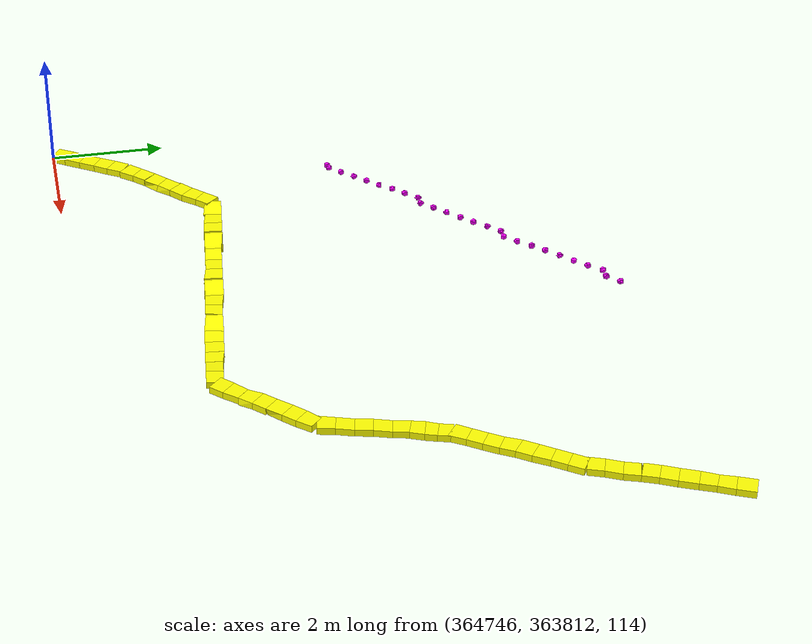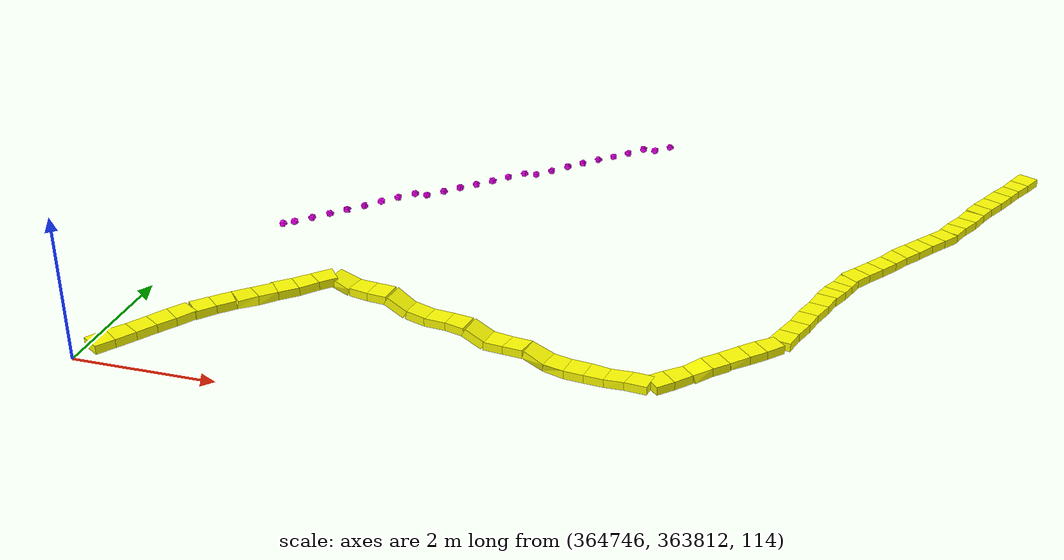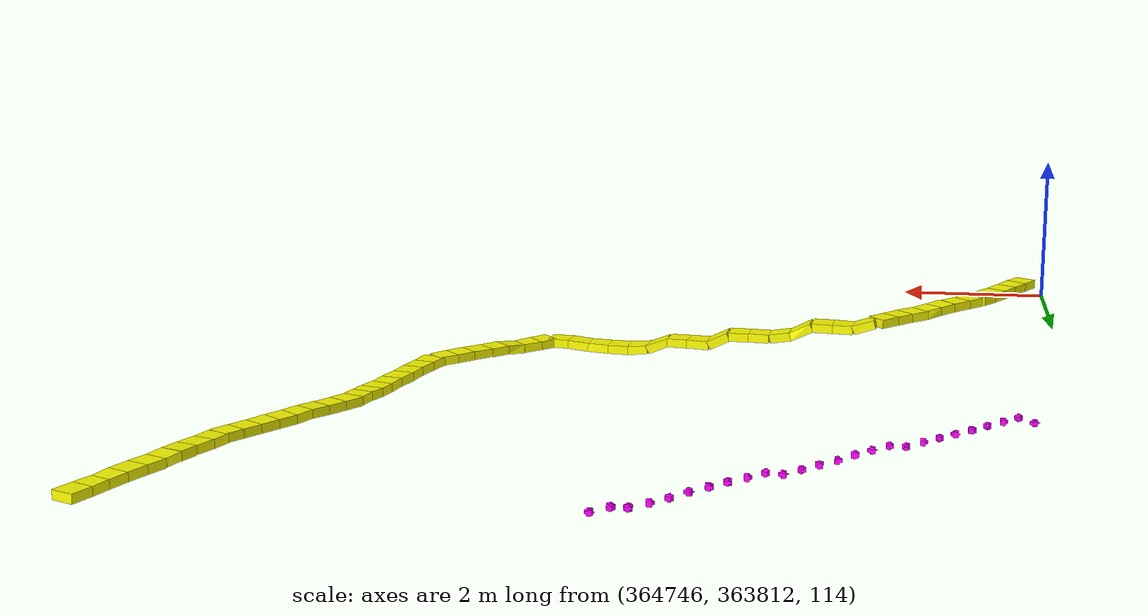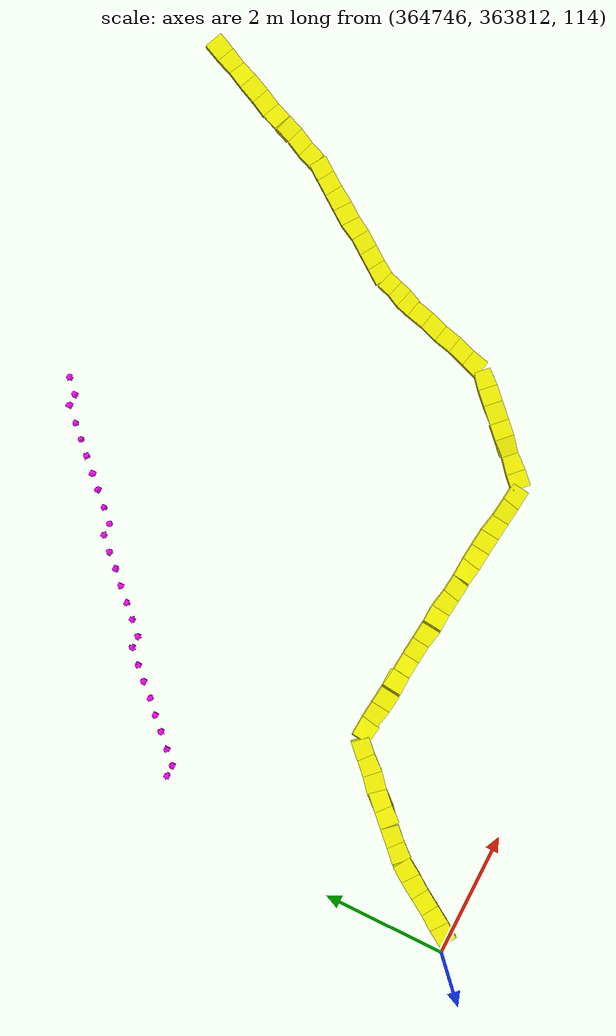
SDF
<sdf version="1.5">
 <world name="default">
  <include><uri>model://sun</uri></include>
  <model name="road_segment_347">
   <static>true</static>
   <pose>364746.31999999995 363812.16 114.21000000064173 0 4.449672419529753e-09 0.982793723303298</pose>
   <link name="link">
    <collision name="collision">
     <geometry><box><size>0.28844410201516346 0.3 0.12</size></box></geometry>
     <surface><friction><ode><mu>0.2</mu><mu2>0.2</mu2></ode></friction></surface>
    </collision>
    <visual name="visual">
     <geometry><box><size>0.28844410201516346 0.3 0.12</size></box></geometry>
     <material><ambient>1 1 0 1</ambient><diffuse>1 1 0 1</diffuse><emissive>1 1 0 1</emissive></material>
    </visual>
   </link>
  </model>
  <model name="road_segment_348">
   <static>true</static>
   <pose>364746.48 363812.39999999997 114.20700000008905 0 0.020798257337755973 0.9827937231353913</pose>
   <link name="link">
    <collision name="collision">
     <geometry><box><size>0.28850649906687204 0.3 0.12</size></box></geometry>
     <surface><friction><ode><mu>0.2</mu><mu2>0.2</mu2></ode></friction></surface>
    </collision>
    <visual name="visual">
     <geometry><box><size>0.28850649906687204 0.3 0.12</size></box></geometry>
     <material><ambient>1 1 0 1</ambient><diffuse>1 1 0 1</diffuse><emissive>1 1 0 1</emissive></material>
    </visual>
   </link>
  </model>
  <model name="road_segment_349">
   <static>true</static>
   <pose>364746.64 363812.64 114.20200000008906 0 0.01386661668165712 0.9827937234152357</pose>
   <link name="link">
    <collision name="collision">
     <geometry><box><size>0.28847183574258783 0.3 0.12</size></box></geometry>
     <surface><friction><ode><mu>0.2</mu><mu2>0.2</mu2></ode></friction></surface>
    </collision>
    <visual name="visual">
     <geometry><box><size>0.28847183574258783 0.3 0.12</size></box></geometry>
     <material><ambient>1 1 0 1</ambient><diffuse>1 1 0 1</diffuse><emissive>1 1 0 1</emissive></material>
    </visual>
   </link>
  </model>
  <model name="road_segment_350">
   <static>true</static>
   <pose>364746.8 363812.88 114.2 0 -0.0 0.9827937231353913</pose>
   <link name="link">
    <collision name="collision">
     <geometry><box><size>0.28844410204745125 0.3 0.12</size></box></geometry>
     <surface><friction><ode><mu>0.2</mu><mu2>0.2</mu2></ode></friction></surface>
    </collision>
    <visual name="visual">
     <geometry><box><size>0.28844410204745125 0.3 0.12</size></box></geometry>
     <material><ambient>1 1 0 1</ambient><diffuse>1 1 0 1</diffuse><emissive>1 1 0 1</emissive></material>
    </visual>
   </link>
  </model>
  <model name="road_segment_351">
   <static>true</static>
   <pose>364746.95999999996 363813.12 114.2 0 -0.0 0.982793723303298</pose>
   <link name="link">
    <collision name="collision">
     <geometry><box><size>0.28844410201516346 0.3 0.12</size></box></geometry>
     <surface><friction><ode><mu>0.2</mu><mu2>0.2</mu2></ode></friction></surface>
    </collision>
    <visual name="visual">
     <geometry><box><size>0.28844410201516346 0.3 0.12</size></box></geometry>
     <material><ambient>1 1 0 1</ambient><diffuse>1 1 0 1</diffuse><emissive>1 1 0 1</emissive></material>
    </visual>
   </link>
  </model>
  <model name="road_segment_352">
   <static>true</static>
   <pose>364747.14 363813.33999999997 114.2 0 -0.0 0.7853981633974483</pose>
   <link name="link">
    <collision name="collision">
     <geometry><box><size>0.2828427124910826 0.3 0.12</size></box></geometry>
     <surface><friction><ode><mu>0.1</mu><mu2>0.1</mu2></ode></friction></surface>
    </collision>
    <visual name="visual">
     <geometry><box><size>0.2828427124910826 0.3 0.12</size></box></geometry>
     <material><ambient>1 1 0 1</ambient><diffuse>1 1 0 1</diffuse><emissive>1 1 0 1</emissive></material>
    </visual>
   </link>
  </model>
  <model name="road_segment_353">
   <static>true</static>
   <pose>364747.33999999997 363813.54000000004 114.2 0 -0.0 0.7853981633974483</pose>
   <link name="link">
    <collision name="collision">
     <geometry><box><size>0.2828427124910826 0.3 0.12</size></box></geometry>
     <surface><friction><ode><mu>0.2</mu><mu2>0.2</mu2></ode></friction></surface>
    </collision>
    <visual name="visual">
     <geometry><box><size>0.2828427124910826 0.3 0.12</size></box></geometry>
     <material><ambient>1 1 0 1</ambient><diffuse>1 1 0 1</diffuse><emissive>1 1 0 1</emissive></material>
    </visual>
   </link>
  </model>
  <model name="road_segment_354">
   <static>true</static>
   <pose>364747.54000000004 363813.74 114.19500000009022 0 0.03534061806756518 0.7853981633974483</pose>
   <link name="link">
    <collision name="collision">
     <geometry><box><size>0.28301943397177626 0.3 0.12</size></box></geometry>
     <surface><friction><ode><mu>0.2</mu><mu2>0.2</mu2></ode></friction></surface>
    </collision>
    <visual name="visual">
     <geometry><box><size>0.28301943397177626 0.3 0.12</size></box></geometry>
     <material><ambient>1 1 0 1</ambient><diffuse>1 1 0 1</diffuse><emissive>1 1 0 1</emissive></material>
    </visual>
   </link>
  </model>
  <model name="road_segment_355">
   <static>true</static>
   <pose>364747.74 363813.94 114.18500000016442 0 0.03534061882803658 0.7853981633974483</pose>
   <link name="link">
    <collision name="collision">
     <geometry><box><size>0.2830194338970162 0.3 0.12</size></box></geometry>
     <surface><friction><ode><mu>0.2</mu><mu2>0.2</mu2></ode></friction></surface>
    </collision>
    <visual name="visual">
     <geometry><box><size>0.2830194338970162 0.3 0.12</size></box></geometry>
     <material><ambient>1 1 0 1</ambient><diffuse>1 1 0 1</diffuse><emissive>1 1 0 1</emissive></material>
    </visual>
   </link>
  </model>
  <model name="road_segment_356">
   <static>true</static>
   <pose>364747.93999999994 363814.14 114.1800000000742 0 5.247374604012433e-10 0.7853981633974483</pose>
   <link name="link">
    <collision name="collision">
     <geometry><box><size>0.2828427124910826 0.3 0.12</size></box></geometry>
     <surface><friction><ode><mu>0.2</mu><mu2>0.2</mu2></ode></friction></surface>
    </collision>
    <visual name="visual">
     <geometry><box><size>0.2828427124910826 0.3 0.12</size></box></geometry>
     <material><ambient>1 1 0 1</ambient><diffuse>1 1 0 1</diffuse><emissive>1 1 0 1</emissive></material>
    </visual>
   </link>
  </model>
  <model name="road_segment_357">
   <static>true</static>
   <pose>364748.14 363814.33999999997 114.17999999999999 0 -0.0 0.7853981633974483</pose>
   <link name="link">
    <collision name="collision">
     <geometry><box><size>0.2828427124910826 0.3 0.12</size></box></geometry>
     <surface><friction><ode><mu>0.2</mu><mu2>0.2</mu2></ode></friction></surface>
    </collision>
    <visual name="visual">
     <geometry><box><size>0.2828427124910826 0.3 0.12</size></box></geometry>
     <material><ambient>1 1 0 1</ambient><diffuse>1 1 0 1</diffuse><emissive>1 1 0 1</emissive></material>
    </visual>
   </link>
  </model>
  <model name="road_segment_358">
   <static>true</static>
   <pose>364748.33999999997 363814.54000000004 114.17999999999999 0 -0.0 0.7853981633974483</pose>
   <link name="link">
    <collision name="collision">
     <geometry><box><size>0.2828427124910826 0.3 0.12</size></box></geometry>
     <surface><friction><ode><mu>0.1</mu><mu2>0.1</mu2></ode></friction></surface>
    </collision>
    <visual name="visual">
     <geometry><box><size>0.2828427124910826 0.3 0.12</size></box></geometry>
     <material><ambient>1 1 0 1</ambient><diffuse>1 1 0 1</diffuse><emissive>1 1 0 1</emissive></material>
    </visual>
   </link>
  </model>
  <model name="road_segment_359">
   <static>true</static>
   <pose>364748.58375 363814.62125 114.13 0 0.3321281979316108 -0.1297025370866688</pose>
   <link name="link">
    <collision name="collision">
     <geometry><box><size>0.306696103634958 0.3 0.12</size></box></geometry>
     <surface><friction><ode><mu>0.02</mu><mu2>0.02</mu2></ode></friction></surface>
    </collision>
    <visual name="visual">
     <geometry><box><size>0.306696103634958 0.3 0.12</size></box></geometry>
     <material><ambient>1 1 0 1</ambient><diffuse>1 1 0 1</diffuse><emissive>1 1 0 1</emissive></material>
    </visual>
   </link>
  </model>
  <model name="road_segment_360">
   <static>true</static>
   <pose>364748.87124999997 363814.58375 114.08 0 -0.0 -0.12970253725977707</pose>
   <link name="link">
    <collision name="collision">
     <geometry><box><size>0.2899353376577284 0.3 0.12</size></box></geometry>
     <surface><friction><ode><mu>0.02</mu><mu2>0.02</mu2></ode></friction></surface>
    </collision>
    <visual name="visual">
     <geometry><box><size>0.2899353376577284 0.3 0.12</size></box></geometry>
     <material><ambient>1 1 0 1</ambient><diffuse>1 1 0 1</diffuse><emissive>1 1 0 1</emissive></material>
    </visual>
   </link>
  </model>
  <model name="road_segment_361">
   <static>true</static>
   <pose>364749.15875 363814.54625 114.08 0 -0.0 -0.1297025370866688</pose>
   <link name="link">
    <collision name="collision">
     <geometry><box><size>0.28993533759248113 0.3 0.12</size></box></geometry>
     <surface><friction><ode><mu>0.02</mu><mu2>0.02</mu2></ode></friction></surface>
    </collision>
    <visual name="visual">
     <geometry><box><size>0.28993533759248113 0.3 0.12</size></box></geometry>
     <material><ambient>1 1 0 1</ambient><diffuse>1 1 0 1</diffuse><emissive>1 1 0 1</emissive></material>
    </visual>
   </link>
  </model>
  <model name="road_segment_362">
   <static>true</static>
   <pose>364749.44625 363814.50875000004 114.00500000188447 0 0.4774363764952575 -0.12970253728574332</pose>
   <link name="link">
    <collision name="collision">
     <geometry><box><size>0.32643911968167894 0.3 0.12</size></box></geometry>
     <surface><friction><ode><mu>0.02</mu><mu2>0.02</mu2></ode></friction></surface>
    </collision>
    <visual name="visual">
     <geometry><box><size>0.32643911968167894 0.3 0.12</size></box></geometry>
     <material><ambient>1 1 0 1</ambient><diffuse>1 1 0 1</diffuse><emissive>1 1 0 1</emissive></material>
    </visual>
   </link>
  </model>
  <model name="road_segment_363">
   <static>true</static>
   <pose>364749.73375 363814.47125 113.90500000188446 0 0.17077256610526173 -0.12970253706070256</pose>
   <link name="link">
    <collision name="collision">
     <geometry><box><size>0.29421505807016607 0.3 0.12</size></box></geometry>
     <surface><friction><ode><mu>0.02</mu><mu2>0.02</mu2></ode></friction></surface>
    </collision>
    <visual name="visual">
     <geometry><box><size>0.29421505807016607 0.3 0.12</size></box></geometry>
     <material><ambient>1 1 0 1</ambient><diffuse>1 1 0 1</diffuse><emissive>1 1 0 1</emissive></material>
    </visual>
   </link>
  </model>
  <model name="road_segment_364">
   <static>true</static>
   <pose>364750.02125 363814.43374999997 113.87999999999998 0 -0.0 -0.12970253728574332</pose>
   <link name="link">
    <collision name="collision">
     <geometry><box><size>0.28993533760000967 0.3 0.12</size></box></geometry>
     <surface><friction><ode><mu>0.02</mu><mu2>0.02</mu2></ode></friction></surface>
    </collision>
    <visual name="visual">
     <geometry><box><size>0.28993533760000967 0.3 0.12</size></box></geometry>
     <material><ambient>1 1 0 1</ambient><diffuse>1 1 0 1</diffuse><emissive>1 1 0 1</emissive></material>
    </visual>
   </link>
  </model>
  <model name="road_segment_365">
   <static>true</static>
   <pose>364750.30874999997 363814.39625 113.87531250141471 0 0.032323524231692234 -0.12970253706070256</pose>
   <link name="link">
    <collision name="collision">
     <geometry><box><size>0.290086867317849 0.3 0.12</size></box></geometry>
     <surface><friction><ode><mu>0.02</mu><mu2>0.02</mu2></ode></friction></surface>
    </collision>
    <visual name="visual">
     <geometry><box><size>0.290086867317849 0.3 0.12</size></box></geometry>
     <material><ambient>1 1 0 1</ambient><diffuse>1 1 0 1</diffuse><emissive>1 1 0 1</emissive></material>
    </visual>
   </link>
  </model>
  <model name="road_segment_366">
   <static>true</static>
   <pose>364750.59625 363814.35875 113.80031250141472 0 0.4515935307599195 -0.12970253728574332</pose>
   <link name="link">
    <collision name="collision">
     <geometry><box><size>0.3222388732136566 0.3 0.12</size></box></geometry>
     <surface><friction><ode><mu>0.02</mu><mu2>0.02</mu2></ode></friction></surface>
    </collision>
    <visual name="visual">
     <geometry><box><size>0.3222388732136566 0.3 0.12</size></box></geometry>
     <material><ambient>1 1 0 1</ambient><diffuse>1 1 0 1</diffuse><emissive>1 1 0 1</emissive></material>
    </visual>
   </link>
  </model>
  <model name="road_segment_367">
   <static>true</static>
   <pose>364750.88375 363814.32125 113.73 0 -0.0 -0.1297025370866688</pose>
   <link name="link">
    <collision name="collision">
     <geometry><box><size>0.28993533759248113 0.3 0.12</size></box></geometry>
     <surface><friction><ode><mu>0.02</mu><mu2>0.02</mu2></ode></friction></surface>
    </collision>
    <visual name="visual">
     <geometry><box><size>0.28993533759248113 0.3 0.12</size></box></geometry>
     <material><ambient>1 1 0 1</ambient><diffuse>1 1 0 1</diffuse><emissive>1 1 0 1</emissive></material>
    </visual>
   </link>
  </model>
  <model name="road_segment_368">
   <static>true</static>
   <pose>364751.17125 363814.28375 113.73 0 -0.0 -0.12970253706070256</pose>
   <link name="link">
    <collision name="collision">
     <geometry><box><size>0.2899353376501999 0.3 0.12</size></box></geometry>
     <surface><friction><ode><mu>0.02</mu><mu2>0.02</mu2></ode></friction></surface>
    </collision>
    <visual name="visual">
     <geometry><box><size>0.2899353376501999 0.3 0.12</size></box></geometry>
     <material><ambient>1 1 0 1</ambient><diffuse>1 1 0 1</diffuse><emissive>1 1 0 1</emissive></material>
    </visual>
   </link>
  </model>
  <model name="road_segment_369">
   <static>true</static>
   <pose>364751.45875 363814.24624999997 113.66906250145291 0 0.397927459303905 -0.12970253728574332</pose>
   <link name="link">
    <collision name="collision">
     <geometry><box><size>0.31450916505872817 0.3 0.12</size></box></geometry>
     <surface><friction><ode><mu>0.02</mu><mu2>0.02</mu2></ode></friction></surface>
    </collision>
    <visual name="visual">
     <geometry><box><size>0.31450916505872817 0.3 0.12</size></box></geometry>
     <material><ambient>1 1 0 1</ambient><diffuse>1 1 0 1</diffuse><emissive>1 1 0 1</emissive></material>
    </visual>
   </link>
  </model>
  <model name="road_segment_370">
   <static>true</static>
   <pose>364751.74624999997 363814.20875 113.59406250145291 0 0.0967018387410119 -0.12970253706070256</pose>
   <link name="link">
    <collision name="collision">
     <geometry><box><size>0.29129626809622544 0.3 0.12</size></box></geometry>
     <surface><friction><ode><mu>0.02</mu><mu2>0.02</mu2></ode></friction></surface>
    </collision>
    <visual name="visual">
     <geometry><box><size>0.29129626809622544 0.3 0.12</size></box></geometry>
     <material><ambient>1 1 0 1</ambient><diffuse>1 1 0 1</diffuse><emissive>1 1 0 1</emissive></material>
    </visual>
   </link>
  </model>
  <model name="road_segment_371">
   <static>true</static>
   <pose>364752.03375 363814.17125 113.58 0 -0.0 -0.12970253728574332</pose>
   <link name="link">
    <collision name="collision">
     <geometry><box><size>0.28993533760000967 0.3 0.12</size></box></geometry>
     <surface><friction><ode><mu>0.02</mu><mu2>0.02</mu2></ode></friction></surface>
    </collision>
    <visual name="visual">
     <geometry><box><size>0.28993533760000967 0.3 0.12</size></box></geometry>
     <material><ambient>1 1 0 1</ambient><diffuse>1 1 0 1</diffuse><emissive>1 1 0 1</emissive></material>
    </visual>
   </link>
  </model>
  <model name="road_segment_372">
   <static>true</static>
   <pose>364752.32125 363814.13375 113.58187499970477 0 -0.01293319522190888 -0.1297025370866688</pose>
   <link name="link">
    <collision name="collision">
     <geometry><box><size>0.2899595876677257 0.3 0.12</size></box></geometry>
     <surface><friction><ode><mu>0.02</mu><mu2>0.02</mu2></ode></friction></surface>
    </collision>
    <visual name="visual">
     <geometry><box><size>0.2899595876677257 0.3 0.12</size></box></geometry>
     <material><ambient>1 1 0 1</ambient><diffuse>1 1 0 1</diffuse><emissive>1 1 0 1</emissive></material>
    </visual>
   </link>
  </model>
  <model name="road_segment_373">
   <static>true</static>
   <pose>364752.60875 363814.09624999994 113.59687499970477 0 -0.09029126122107566 -0.12970253725977707</pose>
   <link name="link">
    <collision name="collision">
     <geometry><box><size>0.2911212162548453 0.3 0.12</size></box></geometry>
     <surface><friction><ode><mu>0.02</mu><mu2>0.02</mu2></ode></friction></surface>
    </collision>
    <visual name="visual">
     <geometry><box><size>0.2911212162548453 0.3 0.12</size></box></geometry>
     <material><ambient>1 1 0 1</ambient><diffuse>1 1 0 1</diffuse><emissive>1 1 0 1</emissive></material>
    </visual>
   </link>
  </model>
  <model name="road_segment_374">
   <static>true</static>
   <pose>364752.89625 363814.05874999997 113.61000000066794 0 -4.607451395492734e-09 -0.1297025370866688</pose>
   <link name="link">
    <collision name="collision">
     <geometry><box><size>0.28993533759248113 0.3 0.12</size></box></geometry>
     <surface><friction><ode><mu>0.02</mu><mu2>0.02</mu2></ode></friction></surface>
    </collision>
    <visual name="visual">
     <geometry><box><size>0.28993533759248113 0.3 0.12</size></box></geometry>
     <material><ambient>1 1 0 1</ambient><diffuse>1 1 0 1</diffuse><emissive>1 1 0 1</emissive></material>
    </visual>
   </link>
  </model>
  <model name="road_segment_375">
   <static>true</static>
   <pose>364753.14 363814.14 113.61000000066794 0 4.722988844321915e-09 0.7853981633974483</pose>
   <link name="link">
    <collision name="collision">
     <geometry><box><size>0.2828427124910826 0.3 0.12</size></box></geometry>
     <surface><friction><ode><mu>0.02</mu><mu2>0.02</mu2></ode></friction></surface>
    </collision>
    <visual name="visual">
     <geometry><box><size>0.2828427124910826 0.3 0.12</size></box></geometry>
     <material><ambient>1 1 0 1</ambient><diffuse>1 1 0 1</diffuse><emissive>1 1 0 1</emissive></material>
    </visual>
   </link>
  </model>
  <model name="road_segment_376">
   <static>true</static>
   <pose>364753.33999999997 363814.33999999997 113.61 0 -0.0 0.7853981633974483</pose>
   <link name="link">
    <collision name="collision">
     <geometry><box><size>0.2828427124910826 0.3 0.12</size></box></geometry>
     <surface><friction><ode><mu>0.2</mu><mu2>0.2</mu2></ode></friction></surface>
    </collision>
    <visual name="visual">
     <geometry><box><size>0.2828427124910826 0.3 0.12</size></box></geometry>
     <material><ambient>1 1 0 1</ambient><diffuse>1 1 0 1</diffuse><emissive>1 1 0 1</emissive></material>
    </visual>
   </link>
  </model>
  <model name="road_segment_377">
   <static>true</static>
   <pose>364753.54000000004 363814.54000000004 113.62499999970315 0 -0.10567093094057438 0.7853981633974483</pose>
   <link name="link">
    <collision name="collision">
     <geometry><box><size>0.28442925302030797 0.3 0.12</size></box></geometry>
     <surface><friction><ode><mu>0.2</mu><mu2>0.2</mu2></ode></friction></surface>
    </collision>
    <visual name="visual">
     <geometry><box><size>0.28442925302030797 0.3 0.12</size></box></geometry>
     <material><ambient>1 1 0 1</ambient><diffuse>1 1 0 1</diffuse><emissive>1 1 0 1</emissive></material>
    </visual>
   </link>
  </model>
  <model name="road_segment_378">
   <static>true</static>
   <pose>364753.74 363814.74 113.63999999970314 0 -2.099100571091917e-09 0.7853981633974483</pose>
   <link name="link">
    <collision name="collision">
     <geometry><box><size>0.2828427124087646 0.3 0.12</size></box></geometry>
     <surface><friction><ode><mu>0.2</mu><mu2>0.2</mu2></ode></friction></surface>
    </collision>
    <visual name="visual">
     <geometry><box><size>0.2828427124087646 0.3 0.12</size></box></geometry>
     <material><ambient>1 1 0 1</ambient><diffuse>1 1 0 1</diffuse><emissive>1 1 0 1</emissive></material>
    </visual>
   </link>
  </model>
  <model name="road_segment_379">
   <static>true</static>
   <pose>364753.93999999994 363814.93999999994 113.64499999992434 0 -0.0353406181703343 0.7853981633974483</pose>
   <link name="link">
    <collision name="collision">
     <geometry><box><size>0.2830194339728046 0.3 0.12</size></box></geometry>
     <surface><friction><ode><mu>0.2</mu><mu2>0.2</mu2></ode></friction></surface>
    </collision>
    <visual name="visual">
     <geometry><box><size>0.2830194339728046 0.3 0.12</size></box></geometry>
     <material><ambient>1 1 0 1</ambient><diffuse>1 1 0 1</diffuse><emissive>1 1 0 1</emissive></material>
    </visual>
   </link>
  </model>
  <model name="road_segment_380">
   <static>true</static>
   <pose>364754.14 363815.14 113.64999999992433 0 -5.350372669296094e-10 0.7853981633974483</pose>
   <link name="link">
    <collision name="collision">
     <geometry><box><size>0.2828427124910826 0.3 0.12</size></box></geometry>
     <surface><friction><ode><mu>0.2</mu><mu2>0.2</mu2></ode></friction></surface>
    </collision>
    <visual name="visual">
     <geometry><box><size>0.2828427124910826 0.3 0.12</size></box></geometry>
     <material><ambient>1 1 0 1</ambient><diffuse>1 1 0 1</diffuse><emissive>1 1 0 1</emissive></material>
    </visual>
   </link>
  </model>
  <model name="road_segment_381">
   <static>true</static>
   <pose>364754.33999999997 363815.33999999997 113.65 0 -0.0 0.7853981633974483</pose>
   <link name="link">
    <collision name="collision">
     <geometry><box><size>0.2828427124910826 0.3 0.12</size></box></geometry>
     <surface><friction><ode><mu>0.2</mu><mu2>0.2</mu2></ode></friction></surface>
    </collision>
    <visual name="visual">
     <geometry><box><size>0.2828427124910826 0.3 0.12</size></box></geometry>
     <material><ambient>1 1 0 1</ambient><diffuse>1 1 0 1</diffuse><emissive>1 1 0 1</emissive></material>
    </visual>
   </link>
  </model>
  <model name="road_segment_382">
   <static>true</static>
   <pose>364754.48 363815.58 113.65 0 -0.0 1.2924966677623289</pose>
   <link name="link">
    <collision name="collision">
     <geometry><box><size>0.29120439560256284 0.3 0.12</size></box></geometry>
     <surface><friction><ode><mu>0.2</mu><mu2>0.2</mu2></ode></friction></surface>
    </collision>
    <visual name="visual">
     <geometry><box><size>0.29120439560256284 0.3 0.12</size></box></geometry>
     <material><ambient>1 1 0 1</ambient><diffuse>1 1 0 1</diffuse><emissive>1 1 0 1</emissive></material>
    </visual>
   </link>
  </model>
  <model name="road_segment_383">
   <static>true</static>
   <pose>364754.56000000006 363815.86 113.65000000000002 0 -4.880027545095268e-14 1.292496667707416</pose>
   <link name="link">
    <collision name="collision">
     <geometry><box><size>0.2912043955465948 0.3 0.12</size></box></geometry>
     <surface><friction><ode><mu>0.2</mu><mu2>0.2</mu2></ode></friction></surface>
    </collision>
    <visual name="visual">
     <geometry><box><size>0.2912043955465948 0.3 0.12</size></box></geometry>
     <material><ambient>1 1 0 1</ambient><diffuse>1 1 0 1</diffuse><emissive>1 1 0 1</emissive></material>
    </visual>
   </link>
  </model>
  <model name="road_segment_384">
   <static>true</static>
   <pose>364754.64 363816.14 113.65000000000002 0 4.880027544425327e-14 1.292496667954524</pose>
   <link name="link">
    <collision name="collision">
     <geometry><box><size>0.29120439558657196 0.3 0.12</size></box></geometry>
     <surface><friction><ode><mu>0.2</mu><mu2>0.2</mu2></ode></friction></surface>
    </collision>
    <visual name="visual">
     <geometry><box><size>0.29120439558657196 0.3 0.12</size></box></geometry>
     <material><ambient>1 1 0 1</ambient><diffuse>1 1 0 1</diffuse><emissive>1 1 0 1</emissive></material>
    </visual>
   </link>
  </model>
  <model name="road_segment_385">
   <static>true</static>
   <pose>364754.72 363816.42000000004 113.65000000000002 0 -4.880027545095268e-14 1.292496667707416</pose>
   <link name="link">
    <collision name="collision">
     <geometry><box><size>0.2912043955465948 0.3 0.12</size></box></geometry>
     <surface><friction><ode><mu>0.2</mu><mu2>0.2</mu2></ode></friction></surface>
    </collision>
    <visual name="visual">
     <geometry><box><size>0.2912043955465948 0.3 0.12</size></box></geometry>
     <material><ambient>1 1 0 1</ambient><diffuse>1 1 0 1</diffuse><emissive>1 1 0 1</emissive></material>
    </visual>
   </link>
  </model>
  <model name="road_segment_386">
   <static>true</static>
   <pose>364754.80000000005 363816.7 113.65000000000002 0 4.880027544157351e-14 1.2924966677623289</pose>
   <link name="link">
    <collision name="collision">
     <geometry><box><size>0.29120439560256284 0.3 0.12</size></box></geometry>
     <surface><friction><ode><mu>0.2</mu><mu2>0.2</mu2></ode></friction></surface>
    </collision>
    <visual name="visual">
     <geometry><box><size>0.29120439560256284 0.3 0.12</size></box></geometry>
     <material><ambient>1 1 0 1</ambient><diffuse>1 1 0 1</diffuse><emissive>1 1 0 1</emissive></material>
    </visual>
   </link>
  </model>
  <model name="road_segment_387">
   <static>true</static>
   <pose>364754.87333333335 363816.94000000006 113.65 0 -0.0 1.249045772485566</pose>
   <link name="link">
    <collision name="collision">
     <geometry><box><size>0.21081851068402757 0.3 0.12</size></box></geometry>
     <surface><friction><ode><mu>0.2</mu><mu2>0.2</mu2></ode></friction></surface>
    </collision>
    <visual name="visual">
     <geometry><box><size>0.21081851068402757 0.3 0.12</size></box></geometry>
     <material><ambient>1 1 0 1</ambient><diffuse>1 1 0 1</diffuse><emissive>1 1 0 1</emissive></material>
    </visual>
   </link>
  </model>
  <model name="road_segment_388">
   <static>true</static>
   <pose>364754.94 363817.14 113.65 0 -0.0 1.2490457723982544</pose>
   <link name="link">
    <collision name="collision">
     <geometry><box><size>0.21081851062880694 0.3 0.12</size></box></geometry>
     <surface><friction><ode><mu>0.2</mu><mu2>0.2</mu2></ode></friction></surface>
    </collision>
    <visual name="visual">
     <geometry><box><size>0.21081851062880694 0.3 0.12</size></box></geometry>
     <material><ambient>1 1 0 1</ambient><diffuse>1 1 0 1</diffuse><emissive>1 1 0 1</emissive></material>
    </visual>
   </link>
  </model>
  <model name="road_segment_389">
   <static>true</static>
   <pose>364755.00666666665 363817.33999999997 113.65 0 -0.0 1.249045772485566</pose>
   <link name="link">
    <collision name="collision">
     <geometry><box><size>0.21081851068402757 0.3 0.12</size></box></geometry>
     <surface><friction><ode><mu>0.2</mu><mu2>0.2</mu2></ode></friction></surface>
    </collision>
    <visual name="visual">
     <geometry><box><size>0.21081851068402757 0.3 0.12</size></box></geometry>
     <material><ambient>1 1 0 1</ambient><diffuse>1 1 0 1</diffuse><emissive>1 1 0 1</emissive></material>
    </visual>
   </link>
  </model>
  <model name="road_segment_390">
   <static>true</static>
   <pose>364755.115 363817.5525 113.65 0 -0.0 0.9827937231279288</pose>
   <link name="link">
    <collision name="collision">
     <geometry><box><size>0.27041634565334166 0.3 0.12</size></box></geometry>
     <surface><friction><ode><mu>0.2</mu><mu2>0.2</mu2></ode></friction></surface>
    </collision>
    <visual name="visual">
     <geometry><box><size>0.27041634565334166 0.3 0.12</size></box></geometry>
     <material><ambient>1 1 0 1</ambient><diffuse>1 1 0 1</diffuse><emissive>1 1 0 1</emissive></material>
    </visual>
   </link>
  </model>
  <model name="road_segment_391">
   <static>true</static>
   <pose>364755.265 363817.77749999997 113.65124999992106 0 -0.009244739309380611 0.9827937234264296</pose>
   <link name="link">
    <collision name="collision">
     <geometry><box><size>0.2704279016751956 0.3 0.12</size></box></geometry>
     <surface><friction><ode><mu>0.2</mu><mu2>0.2</mu2></ode></friction></surface>
    </collision>
    <visual name="visual">
     <geometry><box><size>0.2704279016751956 0.3 0.12</size></box></geometry>
     <material><ambient>1 1 0 1</ambient><diffuse>1 1 0 1</diffuse><emissive>1 1 0 1</emissive></material>
    </visual>
   </link>
  </model>
  <model name="road_segment_392">
   <static>true</static>
   <pose>364755.415 363818.0025 113.65624999992106 0 -0.02772790213476941 0.9827937231279288</pose>
   <link name="link">
    <collision name="collision">
     <geometry><box><size>0.27052033195099345 0.3 0.12</size></box></geometry>
     <surface><friction><ode><mu>0.2</mu><mu2>0.2</mu2></ode></friction></surface>
    </collision>
    <visual name="visual">
     <geometry><box><size>0.27052033195099345 0.3 0.12</size></box></geometry>
     <material><ambient>1 1 0 1</ambient><diffuse>1 1 0 1</diffuse><emissive>1 1 0 1</emissive></material>
    </visual>
   </link>
  </model>
  <model name="road_segment_393">
   <static>true</static>
   <pose>364755.565 363818.2275 113.66 0 -0.0 0.9827937231279288</pose>
   <link name="link">
    <collision name="collision">
     <geometry><box><size>0.27041634565334166 0.3 0.12</size></box></geometry>
     <surface><friction><ode><mu>0.2</mu><mu2>0.2</mu2></ode></friction></surface>
    </collision>
    <visual name="visual">
     <geometry><box><size>0.27041634565334166 0.3 0.12</size></box></geometry>
     <material><ambient>1 1 0 1</ambient><diffuse>1 1 0 1</diffuse><emissive>1 1 0 1</emissive></material>
    </visual>
   </link>
  </model>
  <model name="road_segment_394">
   <static>true</static>
   <pose>364755.71499999997 363818.4525 113.66 0 -0.0 0.9827937234264296</pose>
   <link name="link">
    <collision name="collision">
     <geometry><box><size>0.2704163456694855 0.3 0.12</size></box></geometry>
     <surface><friction><ode><mu>0.2</mu><mu2>0.2</mu2></ode></friction></surface>
    </collision>
    <visual name="visual">
     <geometry><box><size>0.2704163456694855 0.3 0.12</size></box></geometry>
     <material><ambient>1 1 0 1</ambient><diffuse>1 1 0 1</diffuse><emissive>1 1 0 1</emissive></material>
    </visual>
   </link>
  </model>
  <model name="road_segment_395">
   <static>true</static>
   <pose>364755.865 363818.6775 113.66 0 -0.0 0.9827937231279288</pose>
   <link name="link">
    <collision name="collision">
     <geometry><box><size>0.27041634565334166 0.3 0.12</size></box></geometry>
     <surface><friction><ode><mu>0.2</mu><mu2>0.2</mu2></ode></friction></surface>
    </collision>
    <visual name="visual">
     <geometry><box><size>0.27041634565334166 0.3 0.12</size></box></geometry>
     <material><ambient>1 1 0 1</ambient><diffuse>1 1 0 1</diffuse><emissive>1 1 0 1</emissive></material>
    </visual>
   </link>
  </model>
  <model name="road_segment_396">
   <static>true</static>
   <pose>364756.015 363818.90249999997 113.66 0 -0.0 0.9827937234264296</pose>
   <link name="link">
    <collision name="collision">
     <geometry><box><size>0.2704163456694855 0.3 0.12</size></box></geometry>
     <surface><friction><ode><mu>0.2</mu><mu2>0.2</mu2></ode></friction></surface>
    </collision>
    <visual name="visual">
     <geometry><box><size>0.2704163456694855 0.3 0.12</size></box></geometry>
     <material><ambient>1 1 0 1</ambient><diffuse>1 1 0 1</diffuse><emissive>1 1 0 1</emissive></material>
    </visual>
   </link>
  </model>
  <model name="road_segment_397">
   <static>true</static>
   <pose>364756.165 363819.1275 113.66 0 -0.0 0.9827937231279288</pose>
   <link name="link">
    <collision name="collision">
     <geometry><box><size>0.27041634565334166 0.3 0.12</size></box></geometry>
     <surface><friction><ode><mu>0.2</mu><mu2>0.2</mu2></ode></friction></surface>
    </collision>
    <visual name="visual">
     <geometry><box><size>0.27041634565334166 0.3 0.12</size></box></geometry>
     <material><ambient>1 1 0 1</ambient><diffuse>1 1 0 1</diffuse><emissive>1 1 0 1</emissive></material>
    </visual>
   </link>
  </model>
  <model name="road_segment_398">
   <static>true</static>
   <pose>364756.29 363819.365 113.66 0 -0.0 1.190289949762818</pose>
   <link name="link">
    <collision name="collision">
     <geometry><box><size>0.2692582403480781 0.3 0.12</size></box></geometry>
     <surface><friction><ode><mu>0.2</mu><mu2>0.2</mu2></ode></friction></surface>
    </collision>
    <visual name="visual">
     <geometry><box><size>0.2692582403480781 0.3 0.12</size></box></geometry>
     <material><ambient>1 1 0 1</ambient><diffuse>1 1 0 1</diffuse><emissive>1 1 0 1</emissive></material>
    </visual>
   </link>
  </model>
  <model name="road_segment_399">
   <static>true</static>
   <pose>364756.39 363819.615 113.66 0 -0.0 1.190289949562102</pose>
   <link name="link">
    <collision name="collision">
     <geometry><box><size>0.26925824036969587 0.3 0.12</size></box></geometry>
     <surface><friction><ode><mu>0.2</mu><mu2>0.2</mu2></ode></friction></surface>
    </collision>
    <visual name="visual">
     <geometry><box><size>0.26925824036969587 0.3 0.12</size></box></geometry>
     <material><ambient>1 1 0 1</ambient><diffuse>1 1 0 1</diffuse><emissive>1 1 0 1</emissive></material>
    </visual>
   </link>
  </model>
  <model name="road_segment_400">
   <static>true</static>
   <pose>364756.49 363819.865 113.66312500006693 0 -0.023207750308119512 1.190289949562102</pose>
   <link name="link">
    <collision name="collision">
     <geometry><box><size>0.26933076784626436 0.3 0.12</size></box></geometry>
     <surface><friction><ode><mu>0.2</mu><mu2>0.2</mu2></ode></friction></surface>
    </collision>
    <visual name="visual">
     <geometry><box><size>0.26933076784626436 0.3 0.12</size></box></geometry>
     <material><ambient>1 1 0 1</ambient><diffuse>1 1 0 1</diffuse><emissive>1 1 0 1</emissive></material>
    </visual>
   </link>
  </model>
  <model name="road_segment_401">
   <static>true</static>
   <pose>364756.59 363820.115 113.66312500017025 0 0.023207749542953543 1.190289949762818</pose>
   <link name="link">
    <collision name="collision">
     <geometry><box><size>0.2693307678198572 0.3 0.12</size></box></geometry>
     <surface><friction><ode><mu>0.2</mu><mu2>0.2</mu2></ode></friction></surface>
    </collision>
    <visual name="visual">
     <geometry><box><size>0.2693307678198572 0.3 0.12</size></box></geometry>
     <material><ambient>1 1 0 1</ambient><diffuse>1 1 0 1</diffuse><emissive>1 1 0 1</emissive></material>
    </visual>
   </link>
  </model>
  <model name="road_segment_402">
   <static>true</static>
   <pose>364756.7 363820.372 113.66000000010332 0 7.125197983878494e-10 1.144168833717856</pose>
   <link name="link">
    <collision name="collision">
     <geometry><box><size>0.2899931033868107 0.3 0.12</size></box></geometry>
     <surface><friction><ode><mu>0.2</mu><mu2>0.2</mu2></ode></friction></surface>
    </collision>
    <visual name="visual">
     <geometry><box><size>0.2899931033868107 0.3 0.12</size></box></geometry>
     <material><ambient>1 1 0 1</ambient><diffuse>1 1 0 1</diffuse><emissive>1 1 0 1</emissive></material>
    </visual>
   </link>
  </model>
  <model name="road_segment_403">
   <static>true</static>
   <pose>364756.82 363820.636 113.66000000000001 0 4.900411269037468e-14 1.144168833634797</pose>
   <link name="link">
    <collision name="collision">
     <geometry><box><size>0.2899931033338204 0.3 0.12</size></box></geometry>
     <surface><friction><ode><mu>0.2</mu><mu2>0.2</mu2></ode></friction></surface>
    </collision>
    <visual name="visual">
     <geometry><box><size>0.2899931033338204 0.3 0.12</size></box></geometry>
     <material><ambient>1 1 0 1</ambient><diffuse>1 1 0 1</diffuse><emissive>1 1 0 1</emissive></material>
    </visual>
   </link>
  </model>
  <model name="road_segment_404">
   <static>true</static>
   <pose>364756.94 363820.9 113.6552000000837 0 0.03309215003891432 1.144168833717856</pose>
   <link name="link">
    <collision name="collision">
     <geometry><box><size>0.29015196020137307 0.3 0.12</size></box></geometry>
     <surface><friction><ode><mu>0.2</mu><mu2>0.2</mu2></ode></friction></surface>
    </collision>
    <visual name="visual">
     <geometry><box><size>0.29015196020137307 0.3 0.12</size></box></geometry>
     <material><ambient>1 1 0 1</ambient><diffuse>1 1 0 1</diffuse><emissive>1 1 0 1</emissive></material>
    </visual>
   </link>
  </model>
  <model name="road_segment_405">
   <static>true</static>
   <pose>364757.06 363821.164 113.65020000008371 0 0.0013793428502674005 1.144168833634797</pose>
   <link name="link">
    <collision name="collision">
     <geometry><box><size>0.28999337920254964 0.3 0.12</size></box></geometry>
     <surface><friction><ode><mu>0.2</mu><mu2>0.2</mu2></ode></friction></surface>
    </collision>
    <visual name="visual">
     <geometry><box><size>0.28999337920254964 0.3 0.12</size></box></geometry>
     <material><ambient>1 1 0 1</ambient><diffuse>1 1 0 1</diffuse><emissive>1 1 0 1</emissive></material>
    </visual>
   </link>
  </model>
  <model name="road_segment_406">
   <static>true</static>
   <pose>364757.18 363821.42799999996 113.65000000000002 0 4.9004112681420174e-14 1.144168833717856</pose>
   <link name="link">
    <collision name="collision">
     <geometry><box><size>0.2899931033868107 0.3 0.12</size></box></geometry>
     <surface><friction><ode><mu>0.2</mu><mu2>0.2</mu2></ode></friction></surface>
    </collision>
    <visual name="visual">
     <geometry><box><size>0.2899931033868107 0.3 0.12</size></box></geometry>
     <material><ambient>1 1 0 1</ambient><diffuse>1 1 0 1</diffuse><emissive>1 1 0 1</emissive></material>
    </visual>
   </link>
  </model>
  <model name="straight_marker_242">
   <static>true</static>
   <pose>364746.44 363817.04 113.55000000597211 0 0 0</pose>
   <link name="link">
    <visual name="visual">
     <geometry><sphere><radius>0.05</radius></sphere></geometry>
     <material><ambient>1 0 1 1</ambient><diffuse>1 0 1 1</diffuse><emissive>1 0 1 1</emissive></material>
    </visual>
   </link>
  </model>
  <model name="straight_marker_243">
   <static>true</static>
   <pose>364746.64 363817.04 113.61000000082073 0 0 0</pose>
   <link name="link">
    <visual name="visual">
     <geometry><sphere><radius>0.05</radius></sphere></geometry>
     <material><ambient>1 0 1 1</ambient><diffuse>1 0 1 1</diffuse><emissive>1 0 1 1</emissive></material>
    </visual>
   </link>
  </model>
  <model name="straight_marker_244">
   <static>true</static>
   <pose>364746.84 363817.24 113.61 0 0 0</pose>
   <link name="link">
    <visual name="visual">
     <geometry><sphere><radius>0.05</radius></sphere></geometry>
     <material><ambient>1 0 1 1</ambient><diffuse>1 0 1 1</diffuse><emissive>1 0 1 1</emissive></material>
    </visual>
   </link>
  </model>
  <model name="straight_marker_245">
   <static>true</static>
   <pose>364747.04 363817.44 113.61 0 0 0</pose>
   <link name="link">
    <visual name="visual">
     <geometry><sphere><radius>0.05</radius></sphere></geometry>
     <material><ambient>1 0 1 1</ambient><diffuse>1 0 1 1</diffuse><emissive>1 0 1 1</emissive></material>
    </visual>
   </link>
  </model>
  <model name="straight_marker_246">
   <static>true</static>
   <pose>364747.24 363817.64 113.61 0 0 0</pose>
   <link name="link">
    <visual name="visual">
     <geometry><sphere><radius>0.05</radius></sphere></geometry>
     <material><ambient>1 0 1 1</ambient><diffuse>1 0 1 1</diffuse><emissive>1 0 1 1</emissive></material>
    </visual>
   </link>
  </model>
  <model name="straight_marker_247">
   <static>true</static>
   <pose>364747.44 363817.84 113.61 0 0 0</pose>
   <link name="link">
    <visual name="visual">
     <geometry><sphere><radius>0.05</radius></sphere></geometry>
     <material><ambient>1 0 1 1</ambient><diffuse>1 0 1 1</diffuse><emissive>1 0 1 1</emissive></material>
    </visual>
   </link>
  </model>
  <model name="straight_marker_248">
   <static>true</static>
   <pose>364747.64 363818.04 113.61999999933934 0 0 0</pose>
   <link name="link">
    <visual name="visual">
     <geometry><sphere><radius>0.05</radius></sphere></geometry>
     <material><ambient>1 0 1 1</ambient><diffuse>1 0 1 1</diffuse><emissive>1 0 1 1</emissive></material>
    </visual>
   </link>
  </model>
  <model name="straight_marker_249">
   <static>true</static>
   <pose>364747.84 363818.24 113.61999999999999 0 0 0</pose>
   <link name="link">
    <visual name="visual">
     <geometry><sphere><radius>0.05</radius></sphere></geometry>
     <material><ambient>1 0 1 1</ambient><diffuse>1 0 1 1</diffuse><emissive>1 0 1 1</emissive></material>
    </visual>
   </link>
  </model>
  <model name="straight_marker_250">
   <static>true</static>
   <pose>364748.04 363818.44 113.61999999999999 0 0 0</pose>
   <link name="link">
    <visual name="visual">
     <geometry><sphere><radius>0.05</radius></sphere></geometry>
     <material><ambient>1 0 1 1</ambient><diffuse>1 0 1 1</diffuse><emissive>1 0 1 1</emissive></material>
    </visual>
   </link>
  </model>
  <model name="straight_marker_251">
   <static>true</static>
   <pose>364748.24 363818.44 113.61999999999999 0 0 0</pose>
   <link name="link">
    <visual name="visual">
     <geometry><sphere><radius>0.05</radius></sphere></geometry>
     <material><ambient>1 0 1 1</ambient><diffuse>1 0 1 1</diffuse><emissive>1 0 1 1</emissive></material>
    </visual>
   </link>
  </model>
  <model name="straight_marker_252">
   <static>true</static>
   <pose>364748.44 363818.64 113.61999999999999 0 0 0</pose>
   <link name="link">
    <visual name="visual">
     <geometry><sphere><radius>0.05</radius></sphere></geometry>
     <material><ambient>1 0 1 1</ambient><diffuse>1 0 1 1</diffuse><emissive>1 0 1 1</emissive></material>
    </visual>
   </link>
  </model>
  <model name="straight_marker_253">
   <static>true</static>
   <pose>364748.64 363818.84 113.61999999999999 0 0 0</pose>
   <link name="link">
    <visual name="visual">
     <geometry><sphere><radius>0.05</radius></sphere></geometry>
     <material><ambient>1 0 1 1</ambient><diffuse>1 0 1 1</diffuse><emissive>1 0 1 1</emissive></material>
    </visual>
   </link>
  </model>
  <model name="straight_marker_254">
   <static>true</static>
   <pose>364748.84 363819.04 113.61000000016298 0 0 0</pose>
   <link name="link">
    <visual name="visual">
     <geometry><sphere><radius>0.05</radius></sphere></geometry>
     <material><ambient>1 0 1 1</ambient><diffuse>1 0 1 1</diffuse><emissive>1 0 1 1</emissive></material>
    </visual>
   </link>
  </model>
  <model name="straight_marker_255">
   <static>true</static>
   <pose>364749.04 363819.24 113.61 0 0 0</pose>
   <link name="link">
    <visual name="visual">
     <geometry><sphere><radius>0.05</radius></sphere></geometry>
     <material><ambient>1 0 1 1</ambient><diffuse>1 0 1 1</diffuse><emissive>1 0 1 1</emissive></material>
    </visual>
   </link>
  </model>
  <model name="straight_marker_256">
   <static>true</static>
   <pose>364749.24 363819.44 113.61 0 0 0</pose>
   <link name="link">
    <visual name="visual">
     <geometry><sphere><radius>0.05</radius></sphere></geometry>
     <material><ambient>1 0 1 1</ambient><diffuse>1 0 1 1</diffuse><emissive>1 0 1 1</emissive></material>
    </visual>
   </link>
  </model>
  <model name="straight_marker_257">
   <static>true</static>
   <pose>364749.44 363819.64 113.61 0 0 0</pose>
   <link name="link">
    <visual name="visual">
     <geometry><sphere><radius>0.05</radius></sphere></geometry>
     <material><ambient>1 0 1 1</ambient><diffuse>1 0 1 1</diffuse><emissive>1 0 1 1</emissive></material>
    </visual>
   </link>
  </model>
  <model name="straight_marker_258">
   <static>true</static>
   <pose>364749.64 363819.64 113.61999999981373 0 0 0</pose>
   <link name="link">
    <visual name="visual">
     <geometry><sphere><radius>0.05</radius></sphere></geometry>
     <material><ambient>1 0 1 1</ambient><diffuse>1 0 1 1</diffuse><emissive>1 0 1 1</emissive></material>
    </visual>
   </link>
  </model>
  <model name="straight_marker_259">
   <static>true</static>
   <pose>364749.84 363819.84 113.61999999999999 0 0 0</pose>
   <link name="link">
    <visual name="visual">
     <geometry><sphere><radius>0.05</radius></sphere></geometry>
     <material><ambient>1 0 1 1</ambient><diffuse>1 0 1 1</diffuse><emissive>1 0 1 1</emissive></material>
    </visual>
   </link>
  </model>
  <model name="straight_marker_260">
   <static>true</static>
   <pose>364750.04 363820.04 113.6299999998341 0 0 0</pose>
   <link name="link">
    <visual name="visual">
     <geometry><sphere><radius>0.05</radius></sphere></geometry>
     <material><ambient>1 0 1 1</ambient><diffuse>1 0 1 1</diffuse><emissive>1 0 1 1</emissive></material>
    </visual>
   </link>
  </model>
  <model name="straight_marker_261">
   <static>true</static>
   <pose>364750.24 363820.24 113.63 0 0 0</pose>
   <link name="link">
    <visual name="visual">
     <geometry><sphere><radius>0.05</radius></sphere></geometry>
     <material><ambient>1 0 1 1</ambient><diffuse>1 0 1 1</diffuse><emissive>1 0 1 1</emissive></material>
    </visual>
   </link>
  </model>
  <model name="straight_marker_262">
   <static>true</static>
   <pose>364750.44 363820.44 113.63 0 0 0</pose>
   <link name="link">
    <visual name="visual">
     <geometry><sphere><radius>0.05</radius></sphere></geometry>
     <material><ambient>1 0 1 1</ambient><diffuse>1 0 1 1</diffuse><emissive>1 0 1 1</emissive></material>
    </visual>
   </link>
  </model>
  <model name="straight_marker_263">
   <static>true</static>
   <pose>364750.64 363820.64 113.62000000018917 0 0 0</pose>
   <link name="link">
    <visual name="visual">
     <geometry><sphere><radius>0.05</radius></sphere></geometry>
     <material><ambient>1 0 1 1</ambient><diffuse>1 0 1 1</diffuse><emissive>1 0 1 1</emissive></material>
    </visual>
   </link>
  </model>
  <model name="straight_marker_264">
   <static>true</static>
   <pose>364750.84 363820.84 113.61999999999999 0 0 0</pose>
   <link name="link">
    <visual name="visual">
     <geometry><sphere><radius>0.05</radius></sphere></geometry>
     <material><ambient>1 0 1 1</ambient><diffuse>1 0 1 1</diffuse><emissive>1 0 1 1</emissive></material>
    </visual>
   </link>
  </model>
  <model name="straight_marker_265">
   <static>true</static>
   <pose>364751.04 363821.04 113.6299999998312 0 0 0</pose>
   <link name="link">
    <visual name="visual">
     <geometry><sphere><radius>0.05</radius></sphere></geometry>
     <material><ambient>1 0 1 1</ambient><diffuse>1 0 1 1</diffuse><emissive>1 0 1 1</emissive></material>
    </visual>
   </link>
  </model>
  <model name="straight_marker_266">
   <static>true</static>
   <pose>364751.24 363821.04 113.6299999998312 0 0 0</pose>
   <link name="link">
    <visual name="visual">
     <geometry><sphere><radius>0.05</radius></sphere></geometry>
     <material><ambient>1 0 1 1</ambient><diffuse>1 0 1 1</diffuse><emissive>1 0 1 1</emissive></material>
    </visual>
   </link>
  </model>
  <model name="straight_marker_267">
   <static>true</static>
   <pose>364751.44 363821.24 113.63 0 0 0</pose>
   <link name="link">
    <visual name="visual">
     <geometry><sphere><radius>0.05</radius></sphere></geometry>
     <material><ambient>1 0 1 1</ambient><diffuse>1 0 1 1</diffuse><emissive>1 0 1 1</emissive></material>
    </visual>
   </link>
  </model>
 </world>
</sdf>
